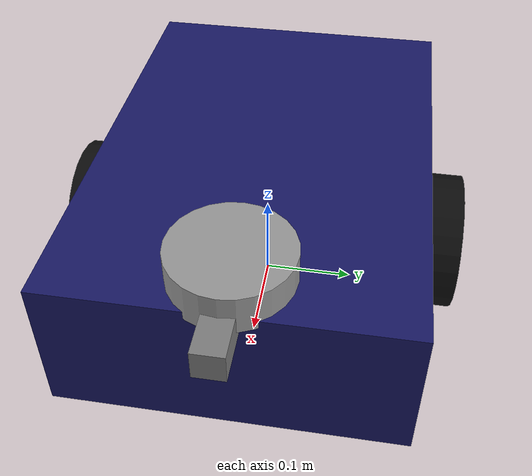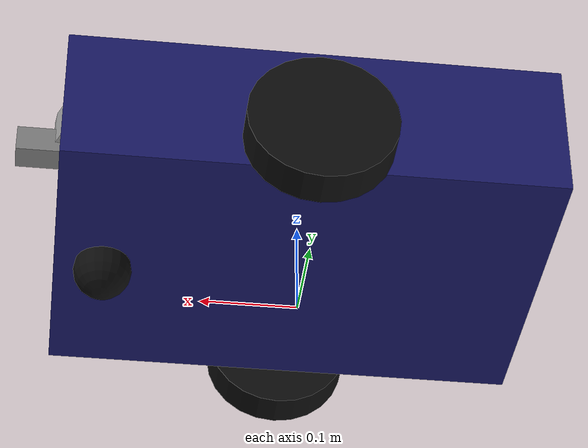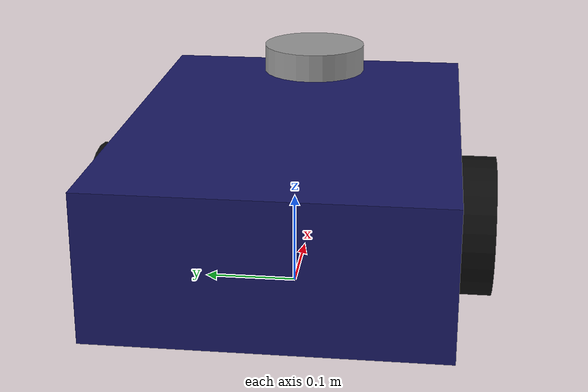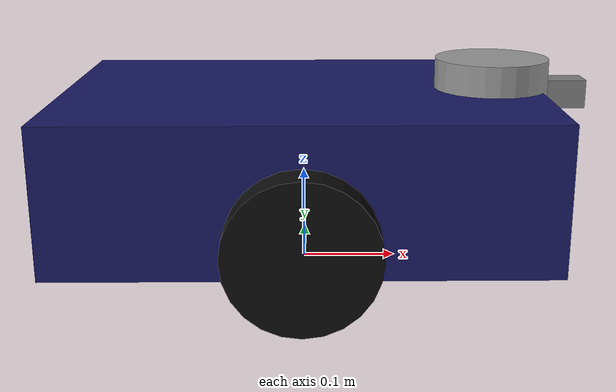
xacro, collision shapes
<?xml version="1.0"?>
<robot name="robot_description" xmlns:xacro="http://www.ros.org/wiki/xacro">

  <!-- Include reusable macros -->
  <xacro:include filename="macros.xacro"/>

  <!-- Path to the meshes folder, used by lidar and camera visuals -->
  <xacro:arg name="mesh_path" default="../meshes/"/>

  <!-- Chassis dimensions and mass -->
  <xacro:property name="base_length" value="0.50"/>
  <xacro:property name="base_width"  value="0.35"/>
  <xacro:property name="base_height" value="0.15"/>
  <xacro:property name="base_mass"   value="8.0"/>

  <!-- Wheel dimensions and mass -->
  <xacro:property name="wheel_radius" value="0.075"/>
  <xacro:property name="wheel_width"  value="0.04"/>
  <xacro:property name="wheel_mass"   value="0.5"/>

  <!-- Caster wheel dimensions and mass -->
  <xacro:property name="caster_radius" value="0.03"/>
  <xacro:property name="caster_mass"   value="0.2"/>

  <!-- Gap between chassis bottom and wheel center, so the chassis sits clearly above the wheels -->
  <xacro:property name="ground_clearance" value="0.04"/>

  <!-- Height of base_link center above the ground -->
  <xacro:property name="chassis_z" value="${wheel_radius + ground_clearance}"/>

  <!-- Offset to keep the drive wheels touching the ground even though the chassis is raised -->
  <xacro:property name="wheel_z_offset" value="${wheel_radius - chassis_z}"/>

  <!-- Offset to keep the caster wheel touching the ground, same logic as the drive wheels -->
  <xacro:property name="caster_z_offset" value="${caster_radius - chassis_z}"/>

  <!-- Small correction for the mesh's internal offset, computed from the STL bounding box -->
  <xacro:property name="lidar_visual_xyz"  value="0.01337 -0.00041 0.00533"/>
  <xacro:property name="lidar_visual_rpy"  value="0 0 0"/>
  <xacro:property name="camera_visual_xyz" value="0.000352 0 0"/>
  <xacro:property name="camera_visual_rpy" value="0 0 0"/>

  <!-- Materials -->
  <material name="dark_blue">
    <color rgba="0.1 0.1 0.4 1.0"/>
  </material>
  <material name="black">
    <color rgba="0.05 0.05 0.05 1.0"/>
  </material>
  <material name="lidar_gray">
    <color rgba="0.6 0.6 0.6 1.0"/>
  </material>
  <material name="camera_black">
    <color rgba="0.5 0.5 0.5 1.0"/>
  </material>

  <!-- Virtual root link, no geometry -->
  <link name="base_footprint"/>

  <joint name="base_footprint_joint" type="fixed">
    <parent link="base_footprint"/>
    <child link="base_link"/>
    <origin xyz="0 0 ${chassis_z}" rpy="0 0 0"/>
  </joint>

  <!-- Chassis -->
  <xacro:box_link
    name="base_link"
    length="${base_length}"
    width="${base_width}"
    height="${base_height}"
    mass="${base_mass}"
    material="dark_blue"/>

  <!-- Drive wheels: reflect = +1 is left (+Y), reflect = -1 is right (-Y) -->
  <xacro:wheel prefix="left"  reflect="1"/>
  <xacro:wheel prefix="right" reflect="-1"/>

  <!-- Caster wheel, fixed, opposite side from lidar/camera -->
  <link name="caster_wheel">
    <visual>
      <origin xyz="0 0 0" rpy="0 0 0"/>
      <geometry>
        <sphere radius="${caster_radius}"/>
      </geometry>
      <material name="black"/>
    </visual>
    <collision>
      <origin xyz="0 0 0" rpy="0 0 0"/>
      <geometry>
        <sphere radius="${caster_radius}"/>
      </geometry>
    </collision>
    <xacro:inertial_sphere mass="${caster_mass}" r="${caster_radius}">
      <origin xyz="0 0 0" rpy="0 0 0"/>
    </xacro:inertial_sphere>
  </link>

  <joint name="caster_wheel_joint" type="fixed">
    <parent link="base_link"/>
    <child link="caster_wheel"/>
    <origin xyz="${(base_length/2 - 0.05)} 0 ${caster_z_offset}" rpy="0 0 0"/>
  </joint>

  <!-- LiDAR link, uses custom mesh lidar.STL -->
  <link name="lidar_link">
    <visual>
      <origin xyz="${lidar_visual_xyz}" rpy="${lidar_visual_rpy}"/>
      <geometry>
        <mesh filename="$(arg mesh_path)lidar.STL" />
      </geometry>
      <material name="lidar_gray"/>
    </visual>
    <collision>
      <origin xyz="0 0 0" rpy="0 0 0"/>
      <geometry>
        <cylinder radius="0.06" length="0.04"/>
      </geometry>
    </collision>
    <inertial>
      <mass value="0.2"/>
      <origin xyz="0 0 0" rpy="0 0 0"/>
      <inertia ixx="0.0001" ixy="0.0" ixz="0.0"
               iyy="0.0001" iyz="0.0"
               izz="0.0001"/>
    </inertial>
  </link>

  <joint name="lidar_joint" type="fixed">
    <parent link="base_link"/>
    <child link="lidar_link"/>
    <origin xyz="0.2 0 0.087" rpy="0 0 0"/>
  </joint>

  <!-- Camera link, uses custom mesh camera.STL -->
  <link name="camera_link">
    <visual>
      <origin xyz="${camera_visual_xyz}" rpy="${camera_visual_rpy}"/>
      <geometry>
        <mesh filename="$(arg mesh_path)camera.STL" scale="0.5 0.5 0.5"/>
      </geometry>
      <material name="camera_black"/>
    </visual>
    <collision>
      <origin xyz="0 0 0" rpy="0 0 0"/>
      <geometry>
        <box size="0.08 0.03 0.03"/>
      </geometry>
    </collision>
    <inertial>
      <mass value="0.1"/>
      <origin xyz="0 0 0" rpy="0 0 0"/>
      <inertia ixx="0.00005" ixy="0.0" ixz="0.0"
               iyy="0.00005" iyz="0.0"
               izz="0.00005"/>
    </inertial>
  </link>

  <joint name="camera_joint" type="fixed">
    <parent link="base_link"/>
    <child link="camera_link"/>
    <origin xyz="0.25880 0 0.070" rpy="0 0 0"/>
  </joint>

  <!-- Optical frame for the camera, follows REP-103 convention (Z forward, X right, Y down) -->
  <link name="camera_optical_link"/>

  <joint name="camera_optical_joint" type="fixed">
    <parent link="camera_link"/>
    <child link="camera_optical_link"/>
    <origin xyz="0 0 0" rpy="-1.5708 0 -1.5708"/>
  </joint>

</robot>

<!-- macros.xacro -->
<robot xmlns:xacro="http://www.ros.org/wiki/xacro">

  <!-- Solid box inertia -->
  <xacro:macro name="inertial_box" params="mass x y z *origin">
    <inertial>
      <xacro:insert_block name="origin"/>
      <mass value="${mass}"/>
      <inertia
        ixx="${mass*(y*y+z*z)/12}" ixy="0" ixz="0"
        iyy="${mass*(x*x+z*z)/12}" iyz="0"
        izz="${mass*(x*x+y*y)/12}"/>
    </inertial>
  </xacro:macro>

  <!-- Solid cylinder inertia, axis along Y (used for wheels) -->
  <xacro:macro name="inertial_cylinder_y" params="mass r h *origin">
    <inertial>
      <xacro:insert_block name="origin"/>
      <mass value="${mass}"/>
      <inertia
        ixx="${mass*(3*r*r+h*h)/12}" ixy="0" ixz="0"
        iyy="${mass*r*r/2}" iyz="0"
        izz="${mass*(3*r*r+h*h)/12}"/>
    </inertial>
  </xacro:macro>

  <!-- Solid sphere inertia -->
  <xacro:macro name="inertial_sphere" params="mass r *origin">
    <inertial>
      <xacro:insert_block name="origin"/>
      <mass value="${mass}"/>
      <inertia
        ixx="${2*mass*r*r/5}" ixy="0" ixz="0"
        iyy="${2*mass*r*r/5}" iyz="0"
        izz="${2*mass*r*r/5}"/>
    </inertial>
  </xacro:macro>

  <!-- Simple box link, used for base_link -->
  <xacro:macro name="box_link" params="name length width height mass material">
    <link name="${name}">
      <visual>
        <origin xyz="0 0 0" rpy="0 0 0"/>
        <geometry>
          <box size="${length} ${width} ${height}"/>
        </geometry>
        <material name="${material}"/>
      </visual>
      <collision>
        <origin xyz="0 0 0" rpy="0 0 0"/>
        <geometry>
          <box size="${length} ${width} ${height}"/>
        </geometry>
      </collision>
      <xacro:inertial_box mass="${mass}" x="${length}" y="${width}" z="${height}">
        <origin xyz="0 0 0" rpy="0 0 0"/>
      </xacro:inertial_box>
    </link>
  </xacro:macro>

  <!-- Driving wheel macro -->
  <xacro:macro name="wheel" params="prefix reflect">
    <link name="${prefix}_wheel">
      <visual>
        <origin xyz="0 0 0" rpy="${pi/2} 0 0"/>
        <geometry>
          <cylinder radius="${wheel_radius}" length="${wheel_width}"/>
        </geometry>
        <material name="black"/>
      </visual>
      <collision>
        <origin xyz="0 0 0" rpy="${pi/2} 0 0"/>
        <geometry>
          <cylinder radius="${wheel_radius}" length="${wheel_width}"/>
        </geometry>
      </collision>
      <xacro:inertial_cylinder_y mass="${wheel_mass}" r="${wheel_radius}" h="${wheel_width}">
        <origin xyz="0 0 0" rpy="0 0 0"/>
      </xacro:inertial_cylinder_y>
    </link>

    <joint name="${prefix}_wheel_joint" type="continuous">
      <parent link="base_link"/>
      <child link="${prefix}_wheel"/>
      <origin xyz="0 ${reflect*(base_width/2 + wheel_width/2)} ${wheel_z_offset}" rpy="0 0 0"/>
      <axis xyz="0 1 0"/>
      <dynamics damping="0.1" friction="0.1"/>
    </joint>
  </xacro:macro>

</robot>
